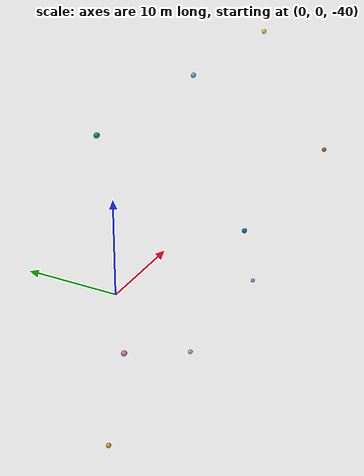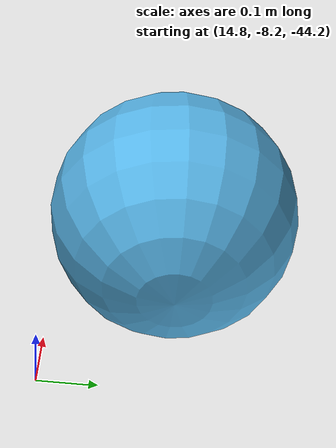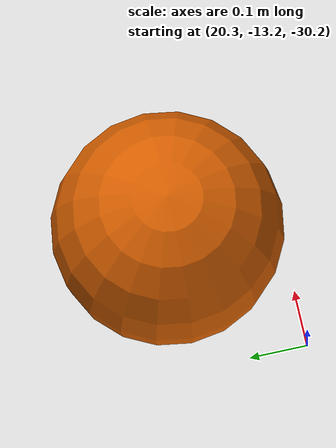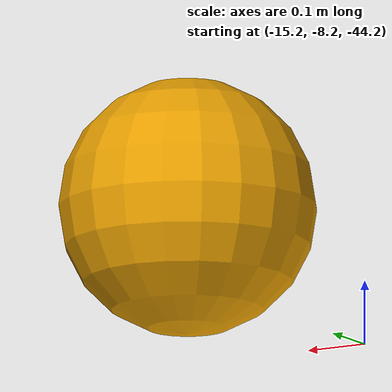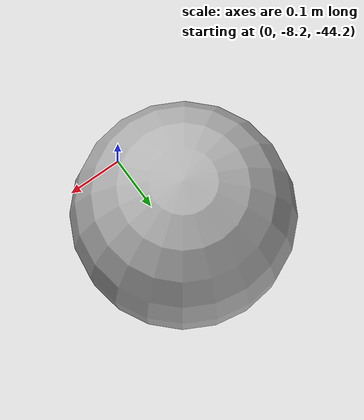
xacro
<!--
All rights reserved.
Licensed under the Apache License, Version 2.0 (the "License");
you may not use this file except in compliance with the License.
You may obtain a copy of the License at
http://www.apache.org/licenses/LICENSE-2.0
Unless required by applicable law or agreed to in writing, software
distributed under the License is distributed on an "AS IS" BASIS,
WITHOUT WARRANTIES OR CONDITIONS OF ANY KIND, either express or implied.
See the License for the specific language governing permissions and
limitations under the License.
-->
<?xml version="1.0"?>

<robot name="taskinterface" xmlns:xacro="http://www.ros.org/wiki/xacro" >

  <xacro:arg name="debug" default="0"/>
  <xacro:arg name="namespace" default="taskvisualizer"/>
  <xacro:arg name="inertial_reference_frame" default="world"/>
  <xacro:property name="namespace" value="taskvisualizer"/>
  <xacro:include filename="$(find dave_snippets)/urdf/tasksnippets.xacro"/>

  <gazebo reference="taskvisualizer">
      <is_static>true</is_static>
  </gazebo>

  <link name="world"/>

  <!-- Options for color are: Red, Blue, Yellow, Green, White, Purple, Turquoise. Gazebo stores materials at
  /usr/local/share/gazebo-11/media/materials/scripts/gazebo.material -->

  <xacro:task_vis
    x="0"
    y="-8"
    z="-17"
    color="Green"
    number="1">
  </xacro:task_vis>
  <xacro:task_vis
    x="-15"
    y="-8"
    z="-17"
    color="Green"
    number="2">
  </xacro:task_vis>
  <xacro:task_vis
    x="15"
    y="-8"
    z="-17"
    color="Green"
    number="3">
  </xacro:task_vis>
  <xacro:task_vis
    x="0"
    y="-13"
    z="-30"
    color="Green"
    number="4">
  </xacro:task_vis>
  <xacro:task_vis
    x="20.5"
    y="-13"
    z="-30"
    color="Green"
    number="5">
  </xacro:task_vis>
  <xacro:task_vis
    x="-20.5"
    y="-13"
    z="-30"
    color="Green"
    number="6">
  </xacro:task_vis>
  <xacro:task_vis
    x="0"
    y="-8"
    z="-44"
    color="Green"
    number="7">
  </xacro:task_vis>
  <xacro:task_vis
    x="-15"
    y="-8"
    z="-44"
    color="Green"
    number="8">
  </xacro:task_vis>
  <xacro:task_vis
    x="15"
    y="-8"
    z="-44"
    color="Green"
    number="9">
  </xacro:task_vis>

</robot>

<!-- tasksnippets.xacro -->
<robot xmlns:xacro="http://www.ros.org/wiki/xacro">

  <xacro:include filename="$(find uuv_descriptions)/urdf/common.urdf.xacro"/>
  <gazebo>
    <material name="myblue">
          <color rgba="0.0 0.0 0.8 1.0"/>
          <shader type='normal_map_object_space'/>
    </material>
  </gazebo>

  <xacro:macro name="task_vis" params="x y z color number">

    <link name="taskvisualizer/task_${number}">
      <xacro:no_inertial>
      </xacro:no_inertial>
      <visual>
        <origin xyz="${x} ${y} ${z}" rpy="0 0 0"/>
        <geometry>
          <sphere radius=".2"/>
        </geometry>
      </visual>
      <static>1</static>
    </link>

    <gazebo reference="task_vis/task_${number}">
      <is_static>true</is_static>
    </gazebo>

    <joint name="taskvisualizer/task_${number}_joint" type="fixed">
      <parent link="world"/>
      <child link="taskvisualizer/task_${number}"/>
    </joint>

    <gazebo reference='taskvisualizer/task_${number}'>
    <visual>
      <plugin name="gazebo_ros_model_color" filename="libgazebo_ros_model_color.so">
        <robotNamespace>/taskvisualizer/task_${number}</robotNamespace> <!-- Robot namespace -->
        <serviceName>/task${number}_color</serviceName> <!-- Service topic name-->
        <color>1.0 1.0 1.0 1.0</color> <!-- Default Color -->
      </plugin>
    </visual>
  </gazebo>
  <gazebo>
    <plugin name="gazebo_ros_control" filename="libgazebo_ros_control.so">
      <robotNamespace>/taskvisualizer/task_${number}</robotNamespace>
    </plugin>
  </gazebo>

  </xacro:macro>

</robot>
